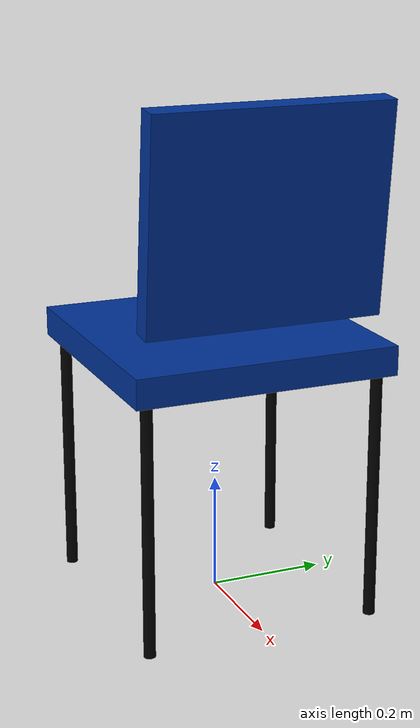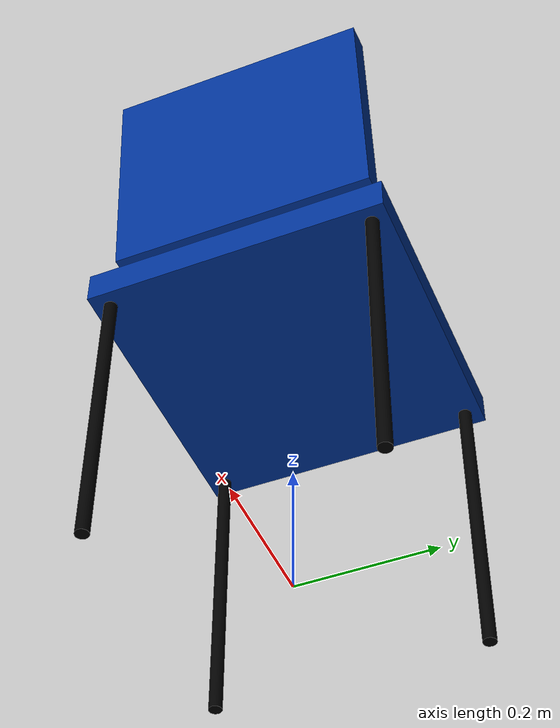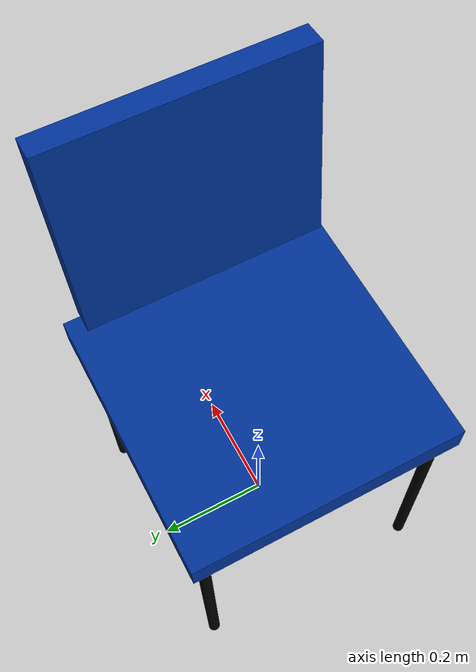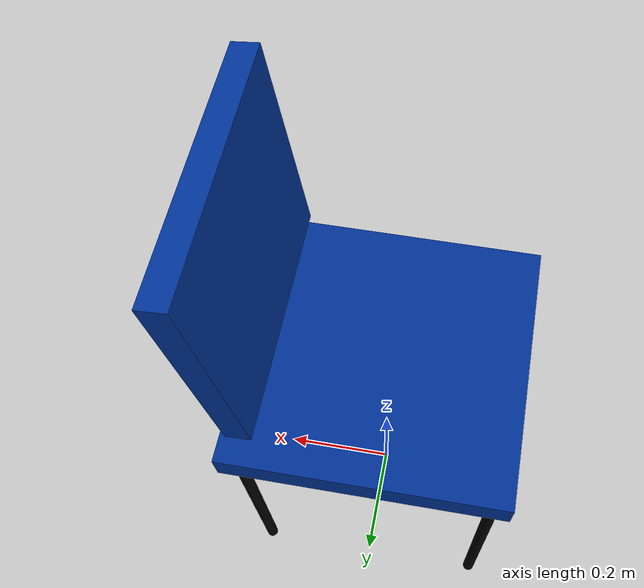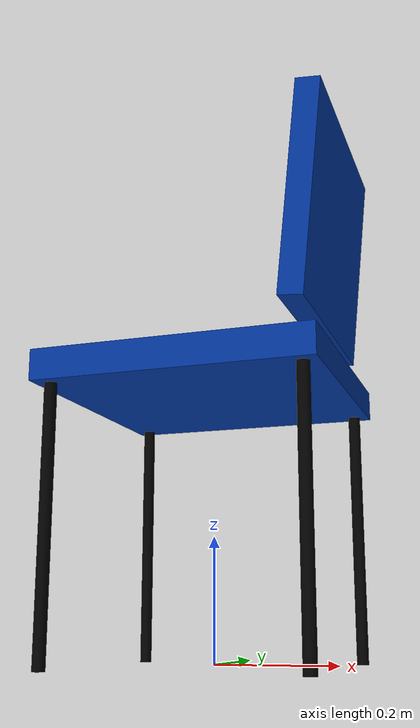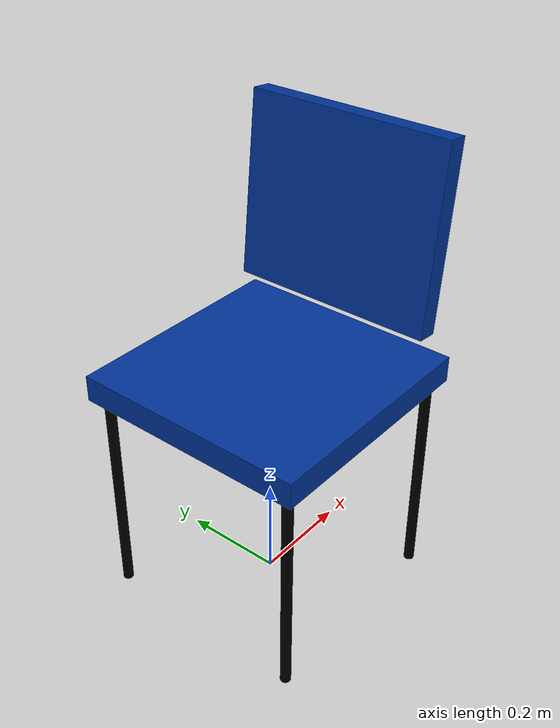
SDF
<?xml version="1.0" ?>
<sdf version="1.6">
  <model name="real_chair">
    <static>true</static>
    <link name="link">
      <visual name="assise">
        <pose>0 0 0.45 0 0 0</pose>
        <geometry><box><size>0.45 0.45 0.05</size></box></geometry>
        <material><ambient>0 0.2 0.6 1</ambient><diffuse>0 0.2 0.6 1</diffuse></material>
      </visual>
      <visual name="dossier">
        <pose>0.2 0 0.7 0 0.1 0</pose>
        <geometry><box><size>0.04 0.4 0.35</size></box></geometry>
        <material><ambient>0 0.2 0.6 1</ambient><diffuse>0 0.2 0.6 1</diffuse></material>
      </visual>
      <visual name="p1"><pose>0.2 0.2 0.22 0 0 0</pose><geometry><cylinder><radius>0.01</radius><length>0.45</length></cylinder></geometry><material><ambient>0 0 0 1</ambient></material></visual>
      <visual name="p2"><pose>0.2 -0.2 0.22 0 0 0</pose><geometry><cylinder><radius>0.01</radius><length>0.45</length></cylinder></geometry><material><ambient>0 0 0 1</ambient></material></visual>
      <visual name="p3"><pose>-0.2 0.2 0.22 0 0 0</pose><geometry><cylinder><radius>0.01</radius><length>0.45</length></cylinder></geometry><material><ambient>0 0 0 1</ambient></material></visual>
      <visual name="p4"><pose>-0.2 -0.2 0.22 0 0 0</pose><geometry><cylinder><radius>0.01</radius><length>0.45</length></cylinder></geometry><material><ambient>0 0 0 1</ambient></material></visual>
    </link>
  </model>
</sdf>
